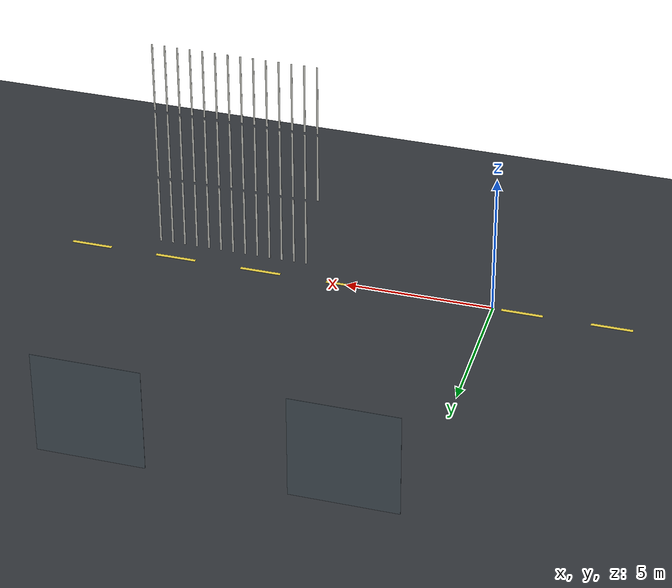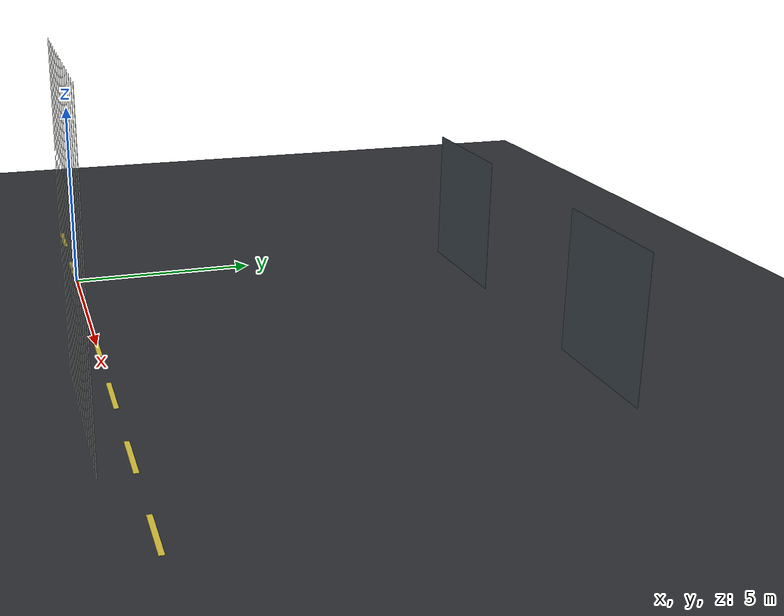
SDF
<sdf version="1.9">
 <world name="iris_mppi_industrial_yard">
  <model name="asphalt">
   <static>true</static>
   <pose>15 0 -0.15 0 0 0</pose>
   <link name="body">
    <collision name="collision"><geometry><box><size>65 50 0.3</size></box></geometry></collision>
    <visual name="visual">
     <geometry><box><size>65 50 0.3</size></box></geometry>
     <material><ambient>.19 .20 .22 1</ambient><diffuse>.19 .20 .22 1</diffuse></material>
    </visual>
   </link>
  </model>
  <model name="north_loading_door_2">
   <static>true</static>
   <pose>2 10.995 1.8 0 0 0</pose>
   <link name="body">
    <visual name="visual">
     <geometry><box><size>3.5 0.01 3.6</size></box></geometry>
     <material><ambient>.25 .29 .32 1</ambient><diffuse>.25 .29 .32 1</diffuse></material>
    </visual>
   </link>
  </model>
  <model name="north_loading_door_10">
   <static>true</static>
   <pose>10 10.995 1.8 0 0 0</pose>
   <link name="body">
    <visual name="visual">
     <geometry><box><size>3.5 0.01 3.6</size></box></geometry>
     <material><ambient>.25 .29 .32 1</ambient><diffuse>.25 .29 .32 1</diffuse></material>
    </visual>
   </link>
  </model>
  <model name="rib_0_0_1_1">
   <static>true</static>
   <pose>6.63 -0.782 1.3 0 0 0</pose>
   <link name="body">
    <visual name="visual">
     <geometry><box><size>0.06 0.008 2.5</size></box></geometry>
     <material><ambient>.75 .75 .72 1</ambient><diffuse>.75 .75 .72 1</diffuse></material>
    </visual>
   </link>
  </model>
  <model name="rib_0_0_2_1">
   <static>true</static>
   <pose>7.0600000000000005 -0.782 1.3 0 0 0</pose>
   <link name="body">
    <visual name="visual">
     <geometry><box><size>0.06 0.008 2.5</size></box></geometry>
     <material><ambient>.75 .75 .72 1</ambient><diffuse>.75 .75 .72 1</diffuse></material>
    </visual>
   </link>
  </model>
  <model name="rib_0_0_3_1">
   <static>true</static>
   <pose>7.49 -0.782 1.3 0 0 0</pose>
   <link name="body">
    <visual name="visual">
     <geometry><box><size>0.06 0.008 2.5</size></box></geometry>
     <material><ambient>.75 .75 .72 1</ambient><diffuse>.75 .75 .72 1</diffuse></material>
    </visual>
   </link>
  </model>
  <model name="rib_0_0_4_1">
   <static>true</static>
   <pose>7.92 -0.782 1.3 0 0 0</pose>
   <link name="body">
    <visual name="visual">
     <geometry><box><size>0.06 0.008 2.5</size></box></geometry>
     <material><ambient>.75 .75 .72 1</ambient><diffuse>.75 .75 .72 1</diffuse></material>
    </visual>
   </link>
  </model>
  <model name="rib_0_0_5_1">
   <static>true</static>
   <pose>8.35 -0.782 1.3 0 0 0</pose>
   <link name="body">
    <visual name="visual">
     <geometry><box><size>0.06 0.008 2.5</size></box></geometry>
     <material><ambient>.75 .75 .72 1</ambient><diffuse>.75 .75 .72 1</diffuse></material>
    </visual>
   </link>
  </model>
  <model name="rib_0_0_6_1">
   <static>true</static>
   <pose>8.780000000000001 -0.782 1.3 0 0 0</pose>
   <link name="body">
    <visual name="visual">
     <geometry><box><size>0.06 0.008 2.5</size></box></geometry>
     <material><ambient>.75 .75 .72 1</ambient><diffuse>.75 .75 .72 1</diffuse></material>
    </visual>
   </link>
  </model>
  <model name="rib_0_0_7_1">
   <static>true</static>
   <pose>9.21 -0.782 1.3 0 0 0</pose>
   <link name="body">
    <visual name="visual">
     <geometry><box><size>0.06 0.008 2.5</size></box></geometry>
     <material><ambient>.75 .75 .72 1</ambient><diffuse>.75 .75 .72 1</diffuse></material>
    </visual>
   </link>
  </model>
  <model name="rib_0_0_8_1">
   <static>true</static>
   <pose>9.64 -0.782 1.3 0 0 0</pose>
   <link name="body">
    <visual name="visual">
     <geometry><box><size>0.06 0.008 2.5</size></box></geometry>
     <material><ambient>.75 .75 .72 1</ambient><diffuse>.75 .75 .72 1</diffuse></material>
    </visual>
   </link>
  </model>
  <model name="rib_0_0_9_1">
   <static>true</static>
   <pose>10.07 -0.782 1.3 0 0 0</pose>
   <link name="body">
    <visual name="visual">
     <geometry><box><size>0.06 0.008 2.5</size></box></geometry>
     <material><ambient>.75 .75 .72 1</ambient><diffuse>.75 .75 .72 1</diffuse></material>
    </visual>
   </link>
  </model>
  <model name="rib_0_0_10_1">
   <static>true</static>
   <pose>10.5 -0.782 1.3 0 0 0</pose>
   <link name="body">
    <visual name="visual">
     <geometry><box><size>0.06 0.008 2.5</size></box></geometry>
     <material><ambient>.75 .75 .72 1</ambient><diffuse>.75 .75 .72 1</diffuse></material>
    </visual>
   </link>
  </model>
  <model name="rib_0_0_11_1">
   <static>true</static>
   <pose>10.93 -0.782 1.3 0 0 0</pose>
   <link name="body">
    <visual name="visual">
     <geometry><box><size>0.06 0.008 2.5</size></box></geometry>
     <material><ambient>.75 .75 .72 1</ambient><diffuse>.75 .75 .72 1</diffuse></material>
    </visual>
   </link>
  </model>
  <model name="rib_0_0_12_1">
   <static>true</static>
   <pose>11.36 -0.782 1.3 0 0 0</pose>
   <link name="body">
    <visual name="visual">
     <geometry><box><size>0.06 0.008 2.5</size></box></geometry>
     <material><ambient>.75 .75 .72 1</ambient><diffuse>.75 .75 .72 1</diffuse></material>
    </visual>
   </link>
  </model>
  <model name="rib_0_0_13_1">
   <static>true</static>
   <pose>11.79 -0.782 1.3 0 0 0</pose>
   <link name="body">
    <visual name="visual">
     <geometry><box><size>0.06 0.008 2.5</size></box></geometry>
     <material><ambient>.75 .75 .72 1</ambient><diffuse>.75 .75 .72 1</diffuse></material>
    </visual>
   </link>
  </model>
  <model name="rib_0_1_0_1">
   <static>true</static>
   <pose>6.2 -0.782 3.9000000000000004 0 0 0</pose>
   <link name="body">
    <visual name="visual">
     <geometry><box><size>0.06 0.008 2.5</size></box></geometry>
     <material><ambient>.75 .75 .72 1</ambient><diffuse>.75 .75 .72 1</diffuse></material>
    </visual>
   </link>
  </model>
  <model name="rib_0_1_1_1">
   <static>true</static>
   <pose>6.63 -0.782 3.9000000000000004 0 0 0</pose>
   <link name="body">
    <visual name="visual">
     <geometry><box><size>0.06 0.008 2.5</size></box></geometry>
     <material><ambient>.75 .75 .72 1</ambient><diffuse>.75 .75 .72 1</diffuse></material>
    </visual>
   </link>
  </model>
  <model name="rib_0_1_2_1">
   <static>true</static>
   <pose>7.0600000000000005 -0.782 3.9000000000000004 0 0 0</pose>
   <link name="body">
    <visual name="visual">
     <geometry><box><size>0.06 0.008 2.5</size></box></geometry>
     <material><ambient>.75 .75 .72 1</ambient><diffuse>.75 .75 .72 1</diffuse></material>
    </visual>
   </link>
  </model>
  <model name="rib_0_1_3_1">
   <static>true</static>
   <pose>7.49 -0.782 3.9000000000000004 0 0 0</pose>
   <link name="body">
    <visual name="visual">
     <geometry><box><size>0.06 0.008 2.5</size></box></geometry>
     <material><ambient>.75 .75 .72 1</ambient><diffuse>.75 .75 .72 1</diffuse></material>
    </visual>
   </link>
  </model>
  <model name="rib_0_1_4_1">
   <static>true</static>
   <pose>7.92 -0.782 3.9000000000000004 0 0 0</pose>
   <link name="body">
    <visual name="visual">
     <geometry><box><size>0.06 0.008 2.5</size></box></geometry>
     <material><ambient>.75 .75 .72 1</ambient><diffuse>.75 .75 .72 1</diffuse></material>
    </visual>
   </link>
  </model>
  <model name="rib_0_1_5_1">
   <static>true</static>
   <pose>8.35 -0.782 3.9000000000000004 0 0 0</pose>
   <link name="body">
    <visual name="visual">
     <geometry><box><size>0.06 0.008 2.5</size></box></geometry>
     <material><ambient>.75 .75 .72 1</ambient><diffuse>.75 .75 .72 1</diffuse></material>
    </visual>
   </link>
  </model>
  <model name="rib_0_1_6_1">
   <static>true</static>
   <pose>8.780000000000001 -0.782 3.9000000000000004 0 0 0</pose>
   <link name="body">
    <visual name="visual">
     <geometry><box><size>0.06 0.008 2.5</size></box></geometry>
     <material><ambient>.75 .75 .72 1</ambient><diffuse>.75 .75 .72 1</diffuse></material>
    </visual>
   </link>
  </model>
  <model name="rib_0_1_7_1">
   <static>true</static>
   <pose>9.21 -0.782 3.9000000000000004 0 0 0</pose>
   <link name="body">
    <visual name="visual">
     <geometry><box><size>0.06 0.008 2.5</size></box></geometry>
     <material><ambient>.75 .75 .72 1</ambient><diffuse>.75 .75 .72 1</diffuse></material>
    </visual>
   </link>
  </model>
  <model name="rib_0_1_8_1">
   <static>true</static>
   <pose>9.64 -0.782 3.9000000000000004 0 0 0</pose>
   <link name="body">
    <visual name="visual">
     <geometry><box><size>0.06 0.008 2.5</size></box></geometry>
     <material><ambient>.75 .75 .72 1</ambient><diffuse>.75 .75 .72 1</diffuse></material>
    </visual>
   </link>
  </model>
  <model name="rib_0_1_9_1">
   <static>true</static>
   <pose>10.07 -0.782 3.9000000000000004 0 0 0</pose>
   <link name="body">
    <visual name="visual">
     <geometry><box><size>0.06 0.008 2.5</size></box></geometry>
     <material><ambient>.75 .75 .72 1</ambient><diffuse>.75 .75 .72 1</diffuse></material>
    </visual>
   </link>
  </model>
  <model name="rib_0_1_10_1">
   <static>true</static>
   <pose>10.5 -0.782 3.9000000000000004 0 0 0</pose>
   <link name="body">
    <visual name="visual">
     <geometry><box><size>0.06 0.008 2.5</size></box></geometry>
     <material><ambient>.75 .75 .72 1</ambient><diffuse>.75 .75 .72 1</diffuse></material>
    </visual>
   </link>
  </model>
  <model name="rib_0_1_11_1">
   <static>true</static>
   <pose>10.93 -0.782 3.9000000000000004 0 0 0</pose>
   <link name="body">
    <visual name="visual">
     <geometry><box><size>0.06 0.008 2.5</size></box></geometry>
     <material><ambient>.75 .75 .72 1</ambient><diffuse>.75 .75 .72 1</diffuse></material>
    </visual>
   </link>
  </model>
  <model name="rib_0_1_12_1">
   <static>true</static>
   <pose>11.36 -0.782 3.9000000000000004 0 0 0</pose>
   <link name="body">
    <visual name="visual">
     <geometry><box><size>0.06 0.008 2.5</size></box></geometry>
     <material><ambient>.75 .75 .72 1</ambient><diffuse>.75 .75 .72 1</diffuse></material>
    </visual>
   </link>
  </model>
  <model name="rib_0_1_13_1">
   <static>true</static>
   <pose>11.79 -0.782 3.9000000000000004 0 0 0</pose>
   <link name="body">
    <visual name="visual">
     <geometry><box><size>0.06 0.008 2.5</size></box></geometry>
     <material><ambient>.75 .75 .72 1</ambient><diffuse>.75 .75 .72 1</diffuse></material>
    </visual>
   </link>
  </model>
  <model name="rib_0_2_0_1">
   <static>true</static>
   <pose>6.2 -0.782 6.5 0 0 0</pose>
   <link name="body">
    <visual name="visual">
     <geometry><box><size>0.06 0.008 2.5</size></box></geometry>
     <material><ambient>.75 .75 .72 1</ambient><diffuse>.75 .75 .72 1</diffuse></material>
    </visual>
   </link>
  </model>
  <model name="rib_0_2_1_1">
   <static>true</static>
   <pose>6.63 -0.782 6.5 0 0 0</pose>
   <link name="body">
    <visual name="visual">
     <geometry><box><size>0.06 0.008 2.5</size></box></geometry>
     <material><ambient>.75 .75 .72 1</ambient><diffuse>.75 .75 .72 1</diffuse></material>
    </visual>
   </link>
  </model>
  <model name="rib_0_2_2_1">
   <static>true</static>
   <pose>7.0600000000000005 -0.782 6.5 0 0 0</pose>
   <link name="body">
    <visual name="visual">
     <geometry><box><size>0.06 0.008 2.5</size></box></geometry>
     <material><ambient>.75 .75 .72 1</ambient><diffuse>.75 .75 .72 1</diffuse></material>
    </visual>
   </link>
  </model>
  <model name="rib_0_2_3_1">
   <static>true</static>
   <pose>7.49 -0.782 6.5 0 0 0</pose>
   <link name="body">
    <visual name="visual">
     <geometry><box><size>0.06 0.008 2.5</size></box></geometry>
     <material><ambient>.75 .75 .72 1</ambient><diffuse>.75 .75 .72 1</diffuse></material>
    </visual>
   </link>
  </model>
  <model name="rib_0_2_4_1">
   <static>true</static>
   <pose>7.92 -0.782 6.5 0 0 0</pose>
   <link name="body">
    <visual name="visual">
     <geometry><box><size>0.06 0.008 2.5</size></box></geometry>
     <material><ambient>.75 .75 .72 1</ambient><diffuse>.75 .75 .72 1</diffuse></material>
    </visual>
   </link>
  </model>
  <model name="rib_0_2_5_1">
   <static>true</static>
   <pose>8.35 -0.782 6.5 0 0 0</pose>
   <link name="body">
    <visual name="visual">
     <geometry><box><size>0.06 0.008 2.5</size></box></geometry>
     <material><ambient>.75 .75 .72 1</ambient><diffuse>.75 .75 .72 1</diffuse></material>
    </visual>
   </link>
  </model>
  <model name="rib_0_2_6_1">
   <static>true</static>
   <pose>8.780000000000001 -0.782 6.5 0 0 0</pose>
   <link name="body">
    <visual name="visual">
     <geometry><box><size>0.06 0.008 2.5</size></box></geometry>
     <material><ambient>.75 .75 .72 1</ambient><diffuse>.75 .75 .72 1</diffuse></material>
    </visual>
   </link>
  </model>
  <model name="rib_0_2_7_1">
   <static>true</static>
   <pose>9.21 -0.782 6.5 0 0 0</pose>
   <link name="body">
    <visual name="visual">
     <geometry><box><size>0.06 0.008 2.5</size></box></geometry>
     <material><ambient>.75 .75 .72 1</ambient><diffuse>.75 .75 .72 1</diffuse></material>
    </visual>
   </link>
  </model>
  <model name="rib_0_2_8_1">
   <static>true</static>
   <pose>9.64 -0.782 6.5 0 0 0</pose>
   <link name="body">
    <visual name="visual">
     <geometry><box><size>0.06 0.008 2.5</size></box></geometry>
     <material><ambient>.75 .75 .72 1</ambient><diffuse>.75 .75 .72 1</diffuse></material>
    </visual>
   </link>
  </model>
  <model name="rib_0_2_9_1">
   <static>true</static>
   <pose>10.07 -0.782 6.5 0 0 0</pose>
   <link name="body">
    <visual name="visual">
     <geometry><box><size>0.06 0.008 2.5</size></box></geometry>
     <material><ambient>.75 .75 .72 1</ambient><diffuse>.75 .75 .72 1</diffuse></material>
    </visual>
   </link>
  </model>
  <model name="rib_0_2_10_1">
   <static>true</static>
   <pose>10.5 -0.782 6.5 0 0 0</pose>
   <link name="body">
    <visual name="visual">
     <geometry><box><size>0.06 0.008 2.5</size></box></geometry>
     <material><ambient>.75 .75 .72 1</ambient><diffuse>.75 .75 .72 1</diffuse></material>
    </visual>
   </link>
  </model>
  <model name="rib_0_2_11_1">
   <static>true</static>
   <pose>10.93 -0.782 6.5 0 0 0</pose>
   <link name="body">
    <visual name="visual">
     <geometry><box><size>0.06 0.008 2.5</size></box></geometry>
     <material><ambient>.75 .75 .72 1</ambient><diffuse>.75 .75 .72 1</diffuse></material>
    </visual>
   </link>
  </model>
  <model name="rib_0_2_12_1">
   <static>true</static>
   <pose>11.36 -0.782 6.5 0 0 0</pose>
   <link name="body">
    <visual name="visual">
     <geometry><box><size>0.06 0.008 2.5</size></box></geometry>
     <material><ambient>.75 .75 .72 1</ambient><diffuse>.75 .75 .72 1</diffuse></material>
    </visual>
   </link>
  </model>
  <model name="rib_0_2_13_1">
   <static>true</static>
   <pose>11.79 -0.782 6.5 0 0 0</pose>
   <link name="body">
    <visual name="visual">
     <geometry><box><size>0.06 0.008 2.5</size></box></geometry>
     <material><ambient>.75 .75 .72 1</ambient><diffuse>.75 .75 .72 1</diffuse></material>
    </visual>
   </link>
  </model>
  <model name="road_dash_-4">
   <static>true</static>
   <pose>-4 0 0.006 0 0 0</pose>
   <link name="body">
    <visual name="visual">
     <geometry><box><size>1.4 0.12 0.01</size></box></geometry>
     <material><ambient>.9 .8 .25 1</ambient><diffuse>.9 .8 .25 1</diffuse></material>
    </visual>
   </link>
  </model>
  <model name="road_dash_-1">
   <static>true</static>
   <pose>-1 0 0.006 0 0 0</pose>
   <link name="body">
    <visual name="visual">
     <geometry><box><size>1.4 0.12 0.01</size></box></geometry>
     <material><ambient>.9 .8 .25 1</ambient><diffuse>.9 .8 .25 1</diffuse></material>
    </visual>
   </link>
  </model>
  <model name="road_dash_2">
   <static>true</static>
   <pose>2 0 0.006 0 0 0</pose>
   <link name="body">
    <visual name="visual">
     <geometry><box><size>1.4 0.12 0.01</size></box></geometry>
     <material><ambient>.9 .8 .25 1</ambient><diffuse>.9 .8 .25 1</diffuse></material>
    </visual>
   </link>
  </model>
  <model name="road_dash_5">
   <static>true</static>
   <pose>5 0 0.006 0 0 0</pose>
   <link name="body">
    <visual name="visual">
     <geometry><box><size>1.4 0.12 0.01</size></box></geometry>
     <material><ambient>.9 .8 .25 1</ambient><diffuse>.9 .8 .25 1</diffuse></material>
    </visual>
   </link>
  </model>
  <model name="road_dash_8">
   <static>true</static>
   <pose>8 0 0.006 0 0 0</pose>
   <link name="body">
    <visual name="visual">
     <geometry><box><size>1.4 0.12 0.01</size></box></geometry>
     <material><ambient>.9 .8 .25 1</ambient><diffuse>.9 .8 .25 1</diffuse></material>
    </visual>
   </link>
  </model>
  <model name="road_dash_11">
   <static>true</static>
   <pose>11 0 0.006 0 0 0</pose>
   <link name="body">
    <visual name="visual">
     <geometry><box><size>1.4 0.12 0.01</size></box></geometry>
     <material><ambient>.9 .8 .25 1</ambient><diffuse>.9 .8 .25 1</diffuse></material>
    </visual>
   </link>
  </model>
  <model name="road_dash_14">
   <static>true</static>
   <pose>14 0 0.006 0 0 0</pose>
   <link name="body">
    <visual name="visual">
     <geometry><box><size>1.4 0.12 0.01</size></box></geometry>
     <material><ambient>.9 .8 .25 1</ambient><diffuse>.9 .8 .25 1</diffuse></material>
    </visual>
   </link>
  </model>
 </world>
</sdf>
